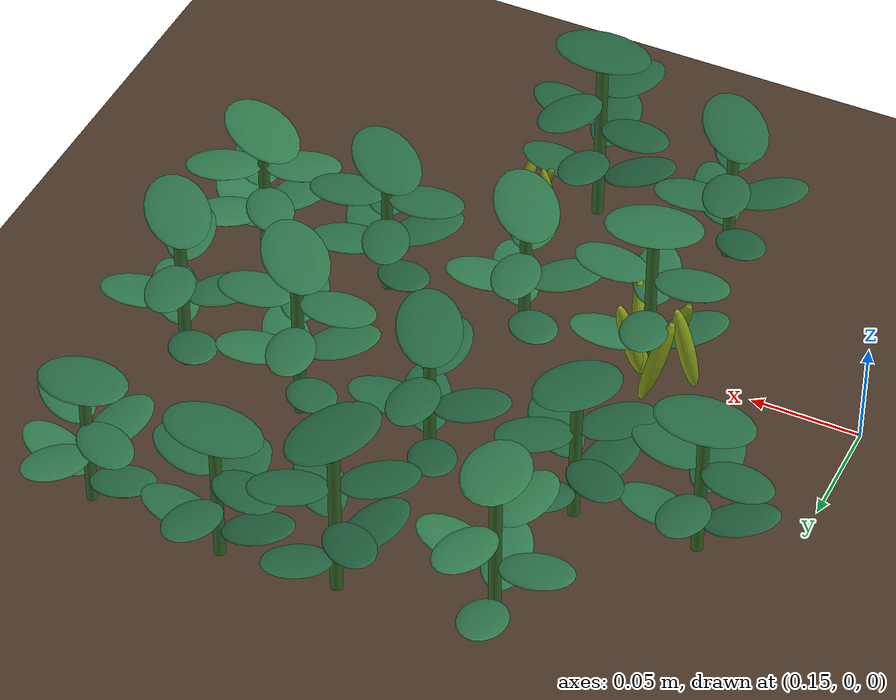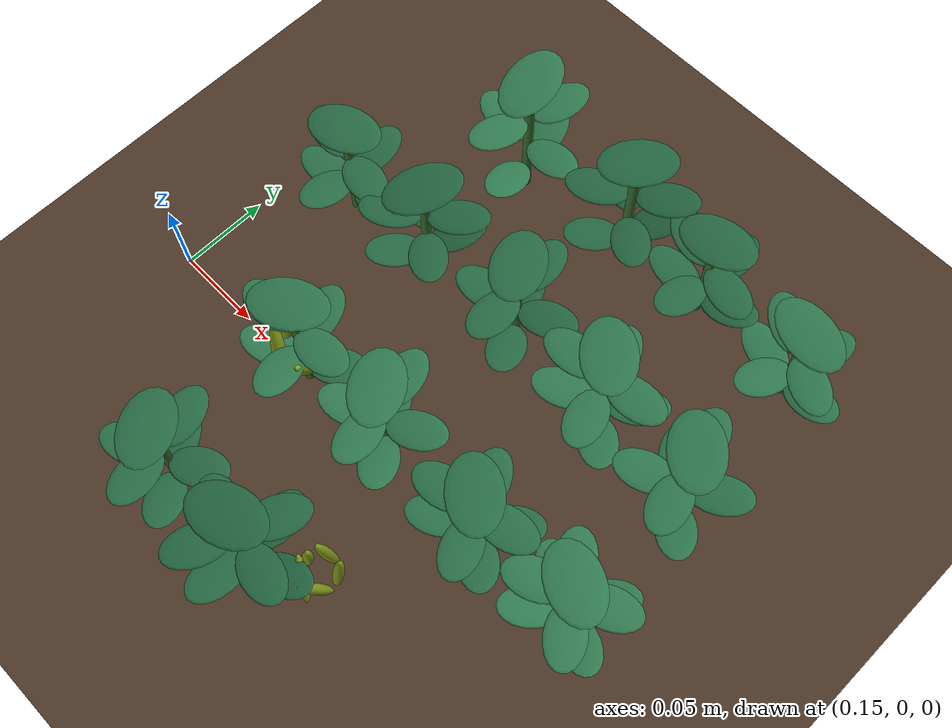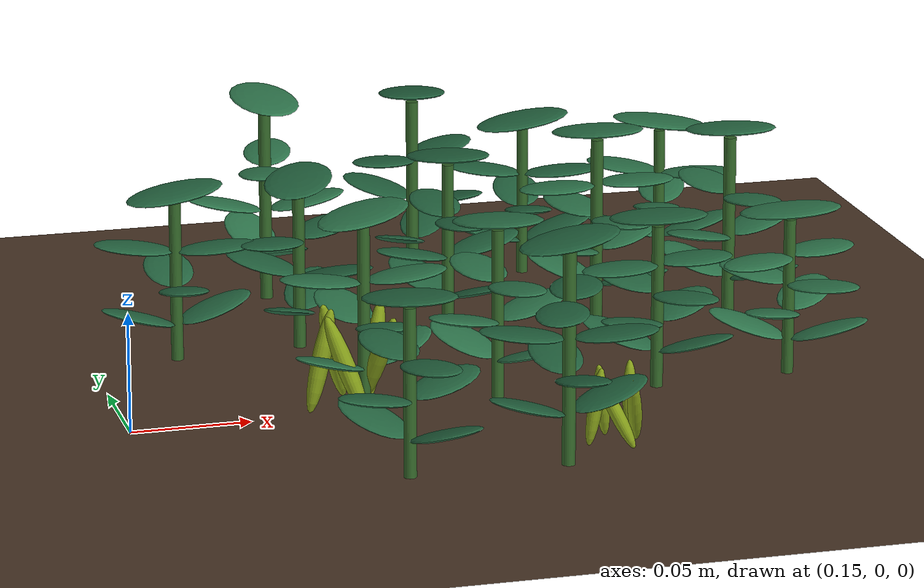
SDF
<sdf version="1.9">
 <world name="jim_field">
  <model name="ground_plane">
   <static>true</static>
   <link name="link">
    <collision name="collision">
     <geometry><plane><normal>0 0 1</normal><size>40 40</size></plane></geometry>
    </collision>
    <visual name="visual">
     <geometry><plane><normal>0 0 1</normal><size>40 40</size></plane></geometry>
     <material>
      <ambient>0.20 0.15 0.11 1</ambient>
      <diffuse>0.30 0.22 0.16 1</diffuse>
      <specular>0.01 0.01 0.01 1</specular>
     </material>
    </visual>
   </link>
  </model>
  <model name="field">
   <static>true</static>
   <pose>0.1837 -0.2516 0 0 0 0</pose>
   <model name="crop_128">
    <static>true</static>
    <pose>0.0617 0.1687 0 0 0 0</pose>
    <link name="link">
     <visual name="stem">
      <pose>0 0 0.0348 0 0 0</pose>
      <geometry><cylinder><radius>0.0026</radius><length>0.0696</length></cylinder></geometry>
      <material>
       <ambient>0.10 0.22 0.09 1</ambient>
       <diffuse>0.20 0.40 0.16 1</diffuse>
       <specular>0.05 0.06 0.05 1</specular>
      </material>
     </visual>
     <visual name="leaflet_0_0">
      <pose>0.0111 -0.0138 0.0209 0 -0.300 5.3866</pose>
      <geometry><ellipsoid><radii>0.0170 0.0105 0.0016</radii></ellipsoid></geometry>
      <material>
       <ambient>0.080 0.216 0.123 1</ambient>
       <diffuse>0.150 0.413 0.263 1</diffuse>
       <specular>0.05 0.06 0.05 1</specular>
      </material>
     </visual>
     <visual name="leaflet_0_1">
      <pose>-0.0111 0.0138 0.0209 0 -0.300 8.5282</pose>
      <geometry><ellipsoid><radii>0.0170 0.0105 0.0016</radii></ellipsoid></geometry>
      <material>
       <ambient>0.080 0.216 0.123 1</ambient>
       <diffuse>0.150 0.413 0.263 1</diffuse>
       <specular>0.05 0.06 0.05 1</specular>
      </material>
     </visual>
     <visual name="leaflet_1_0">
      <pose>0.0159 0.0078 0.0353 0 -0.200 6.7366</pose>
      <geometry><ellipsoid><radii>0.0170 0.0105 0.0016</radii></ellipsoid></geometry>
      <material>
       <ambient>0.080 0.216 0.123 1</ambient>
       <diffuse>0.150 0.413 0.263 1</diffuse>
       <specular>0.05 0.06 0.05 1</specular>
      </material>
     </visual>
     <visual name="leaflet_1_1">
      <pose>-0.0159 -0.0078 0.0353 0 -0.200 9.8782</pose>
      <geometry><ellipsoid><radii>0.0170 0.0105 0.0016</radii></ellipsoid></geometry>
      <material>
       <ambient>0.080 0.216 0.123 1</ambient>
       <diffuse>0.150 0.413 0.263 1</diffuse>
       <specular>0.05 0.06 0.05 1</specular>
      </material>
     </visual>
     <visual name="leaflet_2_0">
      <pose>-0.0041 0.0172 0.0497 0 -0.100 8.0866</pose>
      <geometry><ellipsoid><radii>0.0170 0.0105 0.0016</radii></ellipsoid></geometry>
      <material>
       <ambient>0.080 0.216 0.123 1</ambient>
       <diffuse>0.150 0.413 0.263 1</diffuse>
       <specular>0.05 0.06 0.05 1</specular>
      </material>
     </visual>
     <visual name="leaflet_2_1">
      <pose>0.0041 -0.0172 0.0497 0 -0.100 11.2282</pose>
      <geometry><ellipsoid><radii>0.0170 0.0105 0.0016</radii></ellipsoid></geometry>
      <material>
       <ambient>0.080 0.216 0.123 1</ambient>
       <diffuse>0.150 0.413 0.263 1</diffuse>
       <specular>0.05 0.06 0.05 1</specular>
      </material>
     </visual>
     <visual name="leaflet_terminal">
      <pose>0 0 0.0736 0 -0.12 5.3866</pose>
      <geometry><ellipsoid><radii>0.0215 0.0140 0.0018</radii></ellipsoid></geometry>
      <material>
       <ambient>0.080 0.216 0.123 1</ambient>
       <diffuse>0.150 0.413 0.263 1</diffuse>
       <specular>0.05 0.06 0.05 1</specular>
      </material>
     </visual>
    </link>
   </model>
   <model name="crop_129">
    <static>true</static>
    <pose>0.1259 0.1670 0 0 0 0</pose>
    <link name="link">
     <visual name="stem">
      <pose>0 0 0.0442 0 0 0</pose>
      <geometry><cylinder><radius>0.0027</radius><length>0.0884</length></cylinder></geometry>
      <material>
       <ambient>0.10 0.22 0.09 1</ambient>
       <diffuse>0.20 0.40 0.16 1</diffuse>
       <specular>0.05 0.06 0.05 1</specular>
      </material>
     </visual>
     <visual name="leaflet_0_0">
      <pose>0.0182 0.0043 0.0265 0 -0.300 0.2305</pose>
      <geometry><ellipsoid><radii>0.0170 0.0105 0.0016</radii></ellipsoid></geometry>
      <material>
       <ambient>0.073 0.204 0.114 1</ambient>
       <diffuse>0.135 0.389 0.246 1</diffuse>
       <specular>0.05 0.06 0.05 1</specular>
      </material>
     </visual>
     <visual name="leaflet_0_1">
      <pose>-0.0182 -0.0043 0.0265 0 -0.300 3.3721</pose>
      <geometry><ellipsoid><radii>0.0170 0.0105 0.0016</radii></ellipsoid></geometry>
      <material>
       <ambient>0.073 0.204 0.114 1</ambient>
       <diffuse>0.135 0.389 0.246 1</diffuse>
       <specular>0.05 0.06 0.05 1</specular>
      </material>
     </visual>
     <visual name="leaflet_1_0">
      <pose>-0.0002 0.0187 0.0402 0 -0.200 1.5805</pose>
      <geometry><ellipsoid><radii>0.0170 0.0105 0.0016</radii></ellipsoid></geometry>
      <material>
       <ambient>0.073 0.204 0.114 1</ambient>
       <diffuse>0.135 0.389 0.246 1</diffuse>
       <specular>0.05 0.06 0.05 1</specular>
      </material>
     </visual>
     <visual name="leaflet_1_1">
      <pose>0.0002 -0.0187 0.0402 0 -0.200 4.7221</pose>
      <geometry><ellipsoid><radii>0.0170 0.0105 0.0016</radii></ellipsoid></geometry>
      <material>
       <ambient>0.073 0.204 0.114 1</ambient>
       <diffuse>0.135 0.389 0.246 1</diffuse>
       <specular>0.05 0.06 0.05 1</specular>
      </material>
     </visual>
     <visual name="leaflet_2_0">
      <pose>-0.0183 0.0039 0.0539 0 -0.100 2.9305</pose>
      <geometry><ellipsoid><radii>0.0170 0.0105 0.0016</radii></ellipsoid></geometry>
      <material>
       <ambient>0.073 0.204 0.114 1</ambient>
       <diffuse>0.135 0.389 0.246 1</diffuse>
       <specular>0.05 0.06 0.05 1</specular>
      </material>
     </visual>
     <visual name="leaflet_2_1">
      <pose>0.0183 -0.0039 0.0539 0 -0.100 6.0721</pose>
      <geometry><ellipsoid><radii>0.0170 0.0105 0.0016</radii></ellipsoid></geometry>
      <material>
       <ambient>0.073 0.204 0.114 1</ambient>
       <diffuse>0.135 0.389 0.246 1</diffuse>
       <specular>0.05 0.06 0.05 1</specular>
      </material>
     </visual>
     <visual name="leaflet_3_0">
      <pose>-0.0078 -0.0170 0.0676 0 0.000 4.2805</pose>
      <geometry><ellipsoid><radii>0.0170 0.0105 0.0016</radii></ellipsoid></geometry>
      <material>
       <ambient>0.073 0.204 0.114 1</ambient>
       <diffuse>0.135 0.389 0.246 1</diffuse>
       <specular>0.05 0.06 0.05 1</specular>
      </material>
     </visual>
     <visual name="leaflet_3_1">
      <pose>0.0078 0.0170 0.0676 0 0.000 7.4221</pose>
      <geometry><ellipsoid><radii>0.0170 0.0105 0.0016</radii></ellipsoid></geometry>
      <material>
       <ambient>0.073 0.204 0.114 1</ambient>
       <diffuse>0.135 0.389 0.246 1</diffuse>
       <specular>0.05 0.06 0.05 1</specular>
      </material>
     </visual>
     <visual name="leaflet_terminal">
      <pose>0 0 0.0924 0 -0.12 0.2305</pose>
      <geometry><ellipsoid><radii>0.0215 0.0140 0.0018</radii></ellipsoid></geometry>
      <material>
       <ambient>0.073 0.204 0.114 1</ambient>
       <diffuse>0.135 0.389 0.246 1</diffuse>
       <specular>0.05 0.06 0.05 1</specular>
      </material>
     </visual>
    </link>
   </model>
   <model name="crop_145">
    <static>true</static>
    <pose>0.0642 0.2537 0 0 0 0</pose>
    <link name="link">
     <visual name="stem">
      <pose>0 0 0.0398 0 0 0</pose>
      <geometry><cylinder><radius>0.0026</radius><length>0.0796</length></cylinder></geometry>
      <material>
       <ambient>0.10 0.22 0.09 1</ambient>
       <diffuse>0.20 0.40 0.16 1</diffuse>
       <specular>0.05 0.06 0.05 1</specular>
      </material>
     </visual>
     <visual name="leaflet_0_0">
      <pose>0.0163 0.0083 0.0239 0 -0.300 0.4699</pose>
      <geometry><ellipsoid><radii>0.0170 0.0105 0.0016</radii></ellipsoid></geometry>
      <material>
       <ambient>0.093 0.239 0.141 1</ambient>
       <diffuse>0.177 0.458 0.295 1</diffuse>
       <specular>0.05 0.06 0.05 1</specular>
      </material>
     </visual>
     <visual name="leaflet_0_1">
      <pose>-0.0163 -0.0083 0.0239 0 -0.300 3.6115</pose>
      <geometry><ellipsoid><radii>0.0170 0.0105 0.0016</radii></ellipsoid></geometry>
      <material>
       <ambient>0.093 0.239 0.141 1</ambient>
       <diffuse>0.177 0.458 0.295 1</diffuse>
       <specular>0.05 0.06 0.05 1</specular>
      </material>
     </visual>
     <visual name="leaflet_1_0">
      <pose>-0.0045 0.0177 0.0404 0 -0.200 1.8199</pose>
      <geometry><ellipsoid><radii>0.0170 0.0105 0.0016</radii></ellipsoid></geometry>
      <material>
       <ambient>0.093 0.239 0.141 1</ambient>
       <diffuse>0.177 0.458 0.295 1</diffuse>
       <specular>0.05 0.06 0.05 1</specular>
      </material>
     </visual>
     <visual name="leaflet_1_1">
      <pose>0.0045 -0.0177 0.0404 0 -0.200 4.9615</pose>
      <geometry><ellipsoid><radii>0.0170 0.0105 0.0016</radii></ellipsoid></geometry>
      <material>
       <ambient>0.093 0.239 0.141 1</ambient>
       <diffuse>0.177 0.458 0.295 1</diffuse>
       <specular>0.05 0.06 0.05 1</specular>
      </material>
     </visual>
     <visual name="leaflet_2_0">
      <pose>-0.0182 -0.0005 0.0568 0 -0.100 3.1699</pose>
      <geometry><ellipsoid><radii>0.0170 0.0105 0.0016</radii></ellipsoid></geometry>
      <material>
       <ambient>0.093 0.239 0.141 1</ambient>
       <diffuse>0.177 0.458 0.295 1</diffuse>
       <specular>0.05 0.06 0.05 1</specular>
      </material>
     </visual>
     <visual name="leaflet_2_1">
      <pose>0.0182 0.0005 0.0568 0 -0.100 6.3115</pose>
      <geometry><ellipsoid><radii>0.0170 0.0105 0.0016</radii></ellipsoid></geometry>
      <material>
       <ambient>0.093 0.239 0.141 1</ambient>
       <diffuse>0.177 0.458 0.295 1</diffuse>
       <specular>0.05 0.06 0.05 1</specular>
      </material>
     </visual>
     <visual name="leaflet_terminal">
      <pose>0 0 0.0836 0 -0.12 0.4699</pose>
      <geometry><ellipsoid><radii>0.0215 0.0140 0.0018</radii></ellipsoid></geometry>
      <material>
       <ambient>0.093 0.239 0.141 1</ambient>
       <diffuse>0.177 0.458 0.295 1</diffuse>
       <specular>0.05 0.06 0.05 1</specular>
      </material>
     </visual>
    </link>
   </model>
   <model name="crop_146">
    <static>true</static>
    <pose>0.1217 0.2567 0 0 0 0</pose>
    <link name="link">
     <visual name="stem">
      <pose>0 0 0.0360 0 0 0</pose>
      <geometry><cylinder><radius>0.0026</radius><length>0.0719</length></cylinder></geometry>
      <material>
       <ambient>0.10 0.22 0.09 1</ambient>
       <diffuse>0.20 0.40 0.16 1</diffuse>
       <specular>0.05 0.06 0.05 1</specular>
      </material>
     </visual>
     <visual name="leaflet_0_0">
      <pose>0.0106 -0.0143 0.0216 0 -0.300 5.3491</pose>
      <geometry><ellipsoid><radii>0.0170 0.0105 0.0016</radii></ellipsoid></geometry>
      <material>
       <ambient>0.096 0.243 0.144 1</ambient>
       <diffuse>0.181 0.465 0.300 1</diffuse>
       <specular>0.05 0.06 0.05 1</specular>
      </material>
     </visual>
     <visual name="leaflet_0_1">
      <pose>-0.0106 0.0143 0.0216 0 -0.300 8.4907</pose>
      <geometry><ellipsoid><radii>0.0170 0.0105 0.0016</radii></ellipsoid></geometry>
      <material>
       <ambient>0.096 0.243 0.144 1</ambient>
       <diffuse>0.181 0.465 0.300 1</diffuse>
       <specular>0.05 0.06 0.05 1</specular>
      </material>
     </visual>
     <visual name="leaflet_1_0">
      <pose>0.0163 0.0072 0.0364 0 -0.200 6.6991</pose>
      <geometry><ellipsoid><radii>0.0170 0.0105 0.0016</radii></ellipsoid></geometry>
      <material>
       <ambient>0.096 0.243 0.144 1</ambient>
       <diffuse>0.181 0.465 0.300 1</diffuse>
       <specular>0.05 0.06 0.05 1</specular>
      </material>
     </visual>
     <visual name="leaflet_1_1">
      <pose>-0.0163 -0.0072 0.0364 0 -0.200 9.8407</pose>
      <geometry><ellipsoid><radii>0.0170 0.0105 0.0016</radii></ellipsoid></geometry>
      <material>
       <ambient>0.096 0.243 0.144 1</ambient>
       <diffuse>0.181 0.465 0.300 1</diffuse>
       <specular>0.05 0.06 0.05 1</specular>
      </material>
     </visual>
     <visual name="leaflet_2_0">
      <pose>-0.0035 0.0175 0.0513 0 -0.100 8.0491</pose>
      <geometry><ellipsoid><radii>0.0170 0.0105 0.0016</radii></ellipsoid></geometry>
      <material>
       <ambient>0.096 0.243 0.144 1</ambient>
       <diffuse>0.181 0.465 0.300 1</diffuse>
       <specular>0.05 0.06 0.05 1</specular>
      </material>
     </visual>
     <visual name="leaflet_2_1">
      <pose>0.0035 -0.0175 0.0513 0 -0.100 11.1907</pose>
      <geometry><ellipsoid><radii>0.0170 0.0105 0.0016</radii></ellipsoid></geometry>
      <material>
       <ambient>0.096 0.243 0.144 1</ambient>
       <diffuse>0.181 0.465 0.300 1</diffuse>
       <specular>0.05 0.06 0.05 1</specular>
      </material>
     </visual>
     <visual name="leaflet_terminal">
      <pose>0 0 0.0759 0 -0.12 5.3491</pose>
      <geometry><ellipsoid><radii>0.0215 0.0140 0.0018</radii></ellipsoid></geometry>
      <material>
       <ambient>0.096 0.243 0.144 1</ambient>
       <diffuse>0.181 0.465 0.300 1</diffuse>
       <specular>0.05 0.06 0.05 1</specular>
      </material>
     </visual>
    </link>
   </model>
   <model name="crop_147">
    <static>true</static>
    <pose>0.1896 0.2533 0 0 0 0</pose>
    <link name="link">
     <visual name="stem">
      <pose>0 0 0.0347 0 0 0</pose>
      <geometry><cylinder><radius>0.0026</radius><length>0.0695</length></cylinder></geometry>
      <material>
       <ambient>0.10 0.22 0.09 1</ambient>
       <diffuse>0.20 0.40 0.16 1</diffuse>
       <specular>0.05 0.06 0.05 1</specular>
      </material>
     </visual>
     <visual name="leaflet_0_0">
      <pose>0.0134 -0.0115 0.0208 0 -0.300 5.5731</pose>
      <geometry><ellipsoid><radii>0.0170 0.0105 0.0016</radii></ellipsoid></geometry>
      <material>
       <ambient>0.085 0.224 0.130 1</ambient>
       <diffuse>0.159 0.429 0.274 1</diffuse>
       <specular>0.05 0.06 0.05 1</specular>
      </material>
     </visual>
     <visual name="leaflet_0_1">
      <pose>-0.0134 0.0115 0.0208 0 -0.300 8.7147</pose>
      <geometry><ellipsoid><radii>0.0170 0.0105 0.0016</radii></ellipsoid></geometry>
      <material>
       <ambient>0.085 0.224 0.130 1</ambient>
       <diffuse>0.159 0.429 0.274 1</diffuse>
       <specular>0.05 0.06 0.05 1</specular>
      </material>
     </visual>
     <visual name="leaflet_1_0">
      <pose>0.0142 0.0106 0.0316 0 -0.200 6.9231</pose>
      <geometry><ellipsoid><radii>0.0170 0.0105 0.0016</radii></ellipsoid></geometry>
      <material>
       <ambient>0.085 0.224 0.130 1</ambient>
       <diffuse>0.159 0.429 0.274 1</diffuse>
       <specular>0.05 0.06 0.05 1</specular>
      </material>
     </visual>
     <visual name="leaflet_1_1">
      <pose>-0.0142 -0.0106 0.0316 0 -0.200 10.0647</pose>
      <geometry><ellipsoid><radii>0.0170 0.0105 0.0016</radii></ellipsoid></geometry>
      <material>
       <ambient>0.085 0.224 0.130 1</ambient>
       <diffuse>0.159 0.429 0.274 1</diffuse>
       <specular>0.05 0.06 0.05 1</specular>
      </material>
     </visual>
     <visual name="leaflet_2_0">
      <pose>-0.0072 0.0162 0.0424 0 -0.100 8.2731</pose>
      <geometry><ellipsoid><radii>0.0170 0.0105 0.0016</radii></ellipsoid></geometry>
      <material>
       <ambient>0.085 0.224 0.130 1</ambient>
       <diffuse>0.159 0.429 0.274 1</diffuse>
       <specular>0.05 0.06 0.05 1</specular>
      </material>
     </visual>
     <visual name="leaflet_2_1">
      <pose>0.0072 -0.0162 0.0424 0 -0.100 11.4147</pose>
      <geometry><ellipsoid><radii>0.0170 0.0105 0.0016</radii></ellipsoid></geometry>
      <material>
       <ambient>0.085 0.224 0.130 1</ambient>
       <diffuse>0.159 0.429 0.274 1</diffuse>
       <specular>0.05 0.06 0.05 1</specular>
      </material>
     </visual>
     <visual name="leaflet_3_0">
      <pose>-0.0174 -0.0035 0.0532 0 0.000 9.6231</pose>
      <geometry><ellipsoid><radii>0.0170 0.0105 0.0016</radii></ellipsoid></geometry>
      <material>
       <ambient>0.085 0.224 0.130 1</ambient>
       <diffuse>0.159 0.429 0.274 1</diffuse>
       <specular>0.05 0.06 0.05 1</specular>
      </material>
     </visual>
     <visual name="leaflet_3_1">
      <pose>0.0174 0.0035 0.0532 0 0.000 12.7647</pose>
      <geometry><ellipsoid><radii>0.0170 0.0105 0.0016</radii></ellipsoid></geometry>
      <material>
       <ambient>0.085 0.224 0.130 1</ambient>
       <diffuse>0.159 0.429 0.274 1</diffuse>
       <specular>0.05 0.06 0.05 1</specular>
      </material>
     </visual>
     <visual name="leaflet_terminal">
      <pose>0 0 0.0735 0 -0.12 5.5731</pose>
      <geometry><ellipsoid><radii>0.0215 0.0140 0.0018</radii></ellipsoid></geometry>
      <material>
       <ambient>0.085 0.224 0.130 1</ambient>
       <diffuse>0.159 0.429 0.274 1</diffuse>
       <specular>0.05 0.06 0.05 1</specular>
      </material>
     </visual>
    </link>
   </model>
   <model name="crop_148">
    <static>true</static>
    <pose>0.2484 0.2566 0 0 0 0</pose>
    <link name="link">
     <visual name="stem">
      <pose>0 0 0.0335 0 0 0</pose>
      <geometry><cylinder><radius>0.0025</radius><length>0.0670</length></cylinder></geometry>
      <material>
       <ambient>0.10 0.22 0.09 1</ambient>
       <diffuse>0.20 0.40 0.16 1</diffuse>
       <specular>0.05 0.06 0.05 1</specular>
      </material>
     </visual>
     <visual name="leaflet_0_0">
      <pose>0.0154 -0.0084 0.0201 0 -0.300 5.7834</pose>
      <geometry><ellipsoid><radii>0.0170 0.0105 0.0016</radii></ellipsoid></geometry>
      <material>
       <ambient>0.100 0.250 0.150 1</ambient>
       <diffuse>0.190 0.480 0.310 1</diffuse>
       <specular>0.05 0.06 0.05 1</specular>
      </material>
     </visual>
     <visual name="leaflet_0_1">
      <pose>-0.0154 0.0084 0.0201 0 -0.300 8.9250</pose>
      <geometry><ellipsoid><radii>0.0170 0.0105 0.0016</radii></ellipsoid></geometry>
      <material>
       <ambient>0.100 0.250 0.150 1</ambient>
       <diffuse>0.190 0.480 0.310 1</diffuse>
       <specular>0.05 0.06 0.05 1</specular>
      </material>
     </visual>
     <visual name="leaflet_1_0">
      <pose>0.0116 0.0132 0.0305 0 -0.200 7.1334</pose>
      <geometry><ellipsoid><radii>0.0170 0.0105 0.0016</radii></ellipsoid></geometry>
      <material>
       <ambient>0.100 0.250 0.150 1</ambient>
       <diffuse>0.190 0.480 0.310 1</diffuse>
       <specular>0.05 0.06 0.05 1</specular>
      </material>
     </visual>
     <visual name="leaflet_1_1">
      <pose>-0.0116 -0.0132 0.0305 0 -0.200 10.2750</pose>
      <geometry><ellipsoid><radii>0.0170 0.0105 0.0016</radii></ellipsoid></geometry>
      <material>
       <ambient>0.100 0.250 0.150 1</ambient>
       <diffuse>0.190 0.480 0.310 1</diffuse>
       <specular>0.05 0.06 0.05 1</specular>
      </material>
     </visual>
     <visual name="leaflet_2_0">
      <pose>-0.0103 0.0142 0.0409 0 -0.100 8.4834</pose>
      <geometry><ellipsoid><radii>0.0170 0.0105 0.0016</radii></ellipsoid></geometry>
      <material>
       <ambient>0.100 0.250 0.150 1</ambient>
       <diffuse>0.190 0.480 0.310 1</diffuse>
       <specular>0.05 0.06 0.05 1</specular>
      </material>
     </visual>
     <visual name="leaflet_2_1">
      <pose>0.0103 -0.0142 0.0409 0 -0.100 11.6250</pose>
      <geometry><ellipsoid><radii>0.0170 0.0105 0.0016</radii></ellipsoid></geometry>
      <material>
       <ambient>0.100 0.250 0.150 1</ambient>
       <diffuse>0.190 0.480 0.310 1</diffuse>
       <specular>0.05 0.06 0.05 1</specular>
      </material>
     </visual>
     <visual name="leaflet_3_0">
      <pose>-0.0161 -0.0070 0.0513 0 0.000 9.8334</pose>
      <geometry><ellipsoid><radii>0.0170 0.0105 0.0016</radii></ellipsoid></geometry>
      <material>
       <ambient>0.100 0.250 0.150 1</ambient>
       <diffuse>0.190 0.480 0.310 1</diffuse>
       <specular>0.05 0.06 0.05 1</specular>
      </material>
     </visual>
     <visual name="leaflet_3_1">
      <pose>0.0161 0.0070 0.0513 0 0.000 12.9750</pose>
      <geometry><ellipsoid><radii>0.0170 0.0105 0.0016</radii></ellipsoid></geometry>
      <material>
       <ambient>0.100 0.250 0.150 1</ambient>
       <diffuse>0.190 0.480 0.310 1</diffuse>
       <specular>0.05 0.06 0.05 1</specular>
      </material>
     </visual>
     <visual name="leaflet_terminal">
      <pose>0 0 0.0710 0 -0.12 5.7834</pose>
      <geometry><ellipsoid><radii>0.0215 0.0140 0.0018</radii></ellipsoid></geometry>
      <material>
       <ambient>0.100 0.250 0.150 1</ambient>
       <diffuse>0.190 0.480 0.310 1</diffuse>
       <specular>0.05 0.06 0.05 1</specular>
      </material>
     </visual>
    </link>
   </model>
   <model name="crop_161">
    <static>true</static>
    <pose>0.0040 0.3420 0 0 0 0</pose>
    <link name="link">
     <visual name="stem">
      <pose>0 0 0.0346 0 0 0</pose>
      <geometry><cylinder><radius>0.0026</radius><length>0.0693</length></cylinder></geometry>
      <material>
       <ambient>0.10 0.22 0.09 1</ambient>
       <diffuse>0.20 0.40 0.16 1</diffuse>
       <specular>0.05 0.06 0.05 1</specular>
      </material>
     </visual>
     <visual name="leaflet_0_0">
      <pose>0.0173 0.0037 0.0208 0 -0.300 0.2095</pose>
      <geometry><ellipsoid><radii>0.0170 0.0105 0.0016</radii></ellipsoid></geometry>
      <material>
       <ambient>0.081 0.218 0.125 1</ambient>
       <diffuse>0.152 0.416 0.266 1</diffuse>
       <specular>0.05 0.06 0.05 1</specular>
      </material>
     </visual>
     <visual name="leaflet_0_1">
      <pose>-0.0173 -0.0037 0.0208 0 -0.300 3.3511</pose>
      <geometry><ellipsoid><radii>0.0170 0.0105 0.0016</radii></ellipsoid></geometry>
      <material>
       <ambient>0.081 0.218 0.125 1</ambient>
       <diffuse>0.152 0.416 0.266 1</diffuse>
       <specular>0.05 0.06 0.05 1</specular>
      </material>
     </visual>
     <visual name="leaflet_1_0">
      <pose>0.0002 0.0177 0.0351 0 -0.200 1.5595</pose>
      <geometry><ellipsoid><radii>0.0170 0.0105 0.0016</radii></ellipsoid></geometry>
      <material>
       <ambient>0.081 0.218 0.125 1</ambient>
       <diffuse>0.152 0.416 0.266 1</diffuse>
       <specular>0.05 0.06 0.05 1</specular>
      </material>
     </visual>
     <visual name="leaflet_1_1">
      <pose>-0.0002 -0.0177 0.0351 0 -0.200 4.7011</pose>
      <geometry><ellipsoid><radii>0.0170 0.0105 0.0016</radii></ellipsoid></geometry>
      <material>
       <ambient>0.081 0.218 0.125 1</ambient>
       <diffuse>0.152 0.416 0.266 1</diffuse>
       <specular>0.05 0.06 0.05 1</specular>
      </material>
     </visual>
     <visual name="leaflet_2_0">
      <pose>-0.0172 0.0041 0.0494 0 -0.100 2.9095</pose>
      <geometry><ellipsoid><radii>0.0170 0.0105 0.0016</radii></ellipsoid></geometry>
      <material>
       <ambient>0.081 0.218 0.125 1</ambient>
       <diffuse>0.152 0.416 0.266 1</diffuse>
       <specular>0.05 0.06 0.05 1</specular>
      </material>
     </visual>
     <visual name="leaflet_2_1">
      <pose>0.0172 -0.0041 0.0494 0 -0.100 6.0511</pose>
      <geometry><ellipsoid><radii>0.0170 0.0105 0.0016</radii></ellipsoid></geometry>
      <material>
       <ambient>0.081 0.218 0.125 1</ambient>
       <diffuse>0.152 0.416 0.266 1</diffuse>
       <specular>0.05 0.06 0.05 1</specular>
      </material>
     </visual>
     <visual name="leaflet_terminal">
      <pose>0 0 0.0733 0 -0.12 0.2095</pose>
      <geometry><ellipsoid><radii>0.0215 0.0140 0.0018</radii></ellipsoid></geometry>
      <material>
       <ambient>0.081 0.218 0.125 1</ambient>
       <diffuse>0.152 0.416 0.266 1</diffuse>
       <specular>0.05 0.06 0.05 1</specular>
      </material>
     </visual>
    </link>
   </model>
   <model name="crop_162">
    <static>true</static>
    <pose>0.0583 0.3457 0 0 0 0</pose>
    <link name="link">
     <visual name="stem">
      <pose>0 0 0.0349 0 0 0</pose>
      <geometry><cylinder><radius>0.0026</radius><length>0.0698</length></cylinder></geometry>
      <material>
       <ambient>0.10 0.22 0.09 1</ambient>
       <diffuse>0.20 0.40 0.16 1</diffuse>
       <specular>0.05 0.06 0.05 1</specular>
      </material>
     </visual>
     <visual name="leaflet_0_0">
      <pose>0.0080 0.0158 0.0209 0 -0.300 1.1030</pose>
      <geometry><ellipsoid><radii>0.0170 0.0105 0.0016</radii></ellipsoid></geometry>
      <material>
       <ambient>0.074 0.207 0.115 1</ambient>
       <diffuse>0.138 0.393 0.249 1</diffuse>
       <specular>0.05 0.06 0.05 1</specular>
      </material>
     </visual>
     <visual name="leaflet_0_1">
      <pose>-0.0080 -0.0158 0.0209 0 -0.300 4.2446</pose>
      <geometry><ellipsoid><radii>0.0170 0.0105 0.0016</radii></ellipsoid></geometry>
      <material>
       <ambient>0.074 0.207 0.115 1</ambient>
       <diffuse>0.138 0.393 0.249 1</diffuse>
       <specular>0.05 0.06 0.05 1</specular>
      </material>
     </visual>
     <visual name="leaflet_1_0">
      <pose>-0.0137 0.0113 0.0354 0 -0.200 2.4530</pose>
      <geometry><ellipsoid><radii>0.0170 0.0105 0.0016</radii></ellipsoid></geometry>
      <material>
       <ambient>0.074 0.207 0.115 1</ambient>
       <diffuse>0.138 0.393 0.249 1</diffuse>
       <specular>0.05 0.06 0.05 1</specular>
      </material>
     </visual>
     <visual name="leaflet_1_1">
      <pose>0.0137 -0.0113 0.0354 0 -0.200 5.5946</pose>
      <geometry><ellipsoid><radii>0.0170 0.0105 0.0016</radii></ellipsoid></geometry>
      <material>
       <ambient>0.074 0.207 0.115 1</ambient>
       <diffuse>0.138 0.393 0.249 1</diffuse>
       <specular>0.05 0.06 0.05 1</specular>
      </material>
     </visual>
     <visual name="leaflet_2_0">
      <pose>-0.0140 -0.0109 0.0498 0 -0.100 3.8030</pose>
      <geometry><ellipsoid><radii>0.0170 0.0105 0.0016</radii></ellipsoid></geometry>
      <material>
       <ambient>0.074 0.207 0.115 1</ambient>
       <diffuse>0.138 0.393 0.249 1</diffuse>
       <specular>0.05 0.06 0.05 1</specular>
      </material>
     </visual>
     <visual name="leaflet_2_1">
      <pose>0.0140 0.0109 0.0498 0 -0.100 6.9446</pose>
      <geometry><ellipsoid><radii>0.0170 0.0105 0.0016</radii></ellipsoid></geometry>
      <material>
       <ambient>0.074 0.207 0.115 1</ambient>
       <diffuse>0.138 0.393 0.249 1</diffuse>
       <specular>0.05 0.06 0.05 1</specular>
      </material>
     </visual>
     <visual name="leaflet_terminal">
      <pose>0 0 0.0738 0 -0.12 1.1030</pose>
      <geometry><ellipsoid><radii>0.0215 0.0140 0.0018</radii></ellipsoid></geometry>
      <material>
       <ambient>0.074 0.207 0.115 1</ambient>
       <diffuse>0.138 0.393 0.249 1</diffuse>
       <specular>0.05 0.06 0.05 1</specular>
      </material>
     </visual>
    </link>
   </model>
   <model name="crop_163">
    <static>true</static>
    <pose>0.1244 0.3466 0 0 0 0</pose>
    <link name="link">
     <visual name="stem">
      <pose>0 0 0.0380 0 0 0</pose>
      <geometry><cylinder><radius>0.0026</radius><length>0.0759</length></cylinder></geometry>
      <material>
       <ambient>0.10 0.22 0.09 1</ambient>
       <diffuse>0.20 0.40 0.16 1</diffuse>
       <specular>0.05 0.06 0.05 1</specular>
      </material>
     </visual>
     <visual name="leaflet_0_0">
      <pose>0.0087 -0.0158 0.0228 0 -0.300 5.2154</pose>
      <geometry><ellipsoid><radii>0.0170 0.0105 0.0016</radii></ellipsoid></geometry>
      <material>
       <ambient>0.078 0.213 0.120 1</ambient>
       <diffuse>0.145 0.406 0.258 1</diffuse>
       <specular>0.05 0.06 0.05 1</specular>
      </material>
     </visual>
     <visual name="leaflet_0_1">
      <pose>-0.0087 0.0158 0.0228 0 -0.300 8.3570</pose>
      <geometry><ellipsoid><radii>0.0170 0.0105 0.0016</radii></ellipsoid></geometry>
      <material>
       <ambient>0.078 0.213 0.120 1</ambient>
       <diffuse>0.145 0.406 0.258 1</diffuse>
       <specular>0.05 0.06 0.05 1</specular>
      </material>
     </visual>
     <visual name="leaflet_1_0">
      <pose>0.0173 0.0050 0.0385 0 -0.200 6.5654</pose>
      <geometry><ellipsoid><radii>0.0170 0.0105 0.0016</radii></ellipsoid></geometry>
      <material>
       <ambient>0.078 0.213 0.120 1</ambient>
       <diffuse>0.145 0.406 0.258 1</diffuse>
       <specular>0.05 0.06 0.05 1</specular>
      </material>
     </visual>
     <visual name="leaflet_1_1">
      <pose>-0.0173 -0.0050 0.0385 0 -0.200 9.7070</pose>
      <geometry><ellipsoid><radii>0.0170 0.0105 0.0016</radii></ellipsoid></geometry>
      <material>
       <ambient>0.078 0.213 0.120 1</ambient>
       <diffuse>0.145 0.406 0.258 1</diffuse>
       <specular>0.05 0.06 0.05 1</specular>
      </material>
     </visual>
     <visual name="leaflet_2_0">
      <pose>-0.0011 0.0180 0.0542 0 -0.100 7.9154</pose>
      <geometry><ellipsoid><radii>0.0170 0.0105 0.0016</radii></ellipsoid></geometry>
      <material>
       <ambient>0.078 0.213 0.120 1</ambient>
       <diffuse>0.145 0.406 0.258 1</diffuse>
       <specular>0.05 0.06 0.05 1</specular>
      </material>
     </visual>
     <visual name="leaflet_2_1">
      <pose>0.0011 -0.0180 0.0542 0 -0.100 11.0570</pose>
      <geometry><ellipsoid><radii>0.0170 0.0105 0.0016</radii></ellipsoid></geometry>
      <material>
       <ambient>0.078 0.213 0.120 1</ambient>
       <diffuse>0.145 0.406 0.258 1</diffuse>
       <specular>0.05 0.06 0.05 1</specular>
      </material>
     </visual>
     <visual name="leaflet_terminal">
      <pose>0 0 0.0799 0 -0.12 5.2154</pose>
      <geometry><ellipsoid><radii>0.0215 0.0140 0.0018</radii></ellipsoid></geometry>
      <material>
       <ambient>0.078 0.213 0.120 1</ambient>
       <diffuse>0.145 0.406 0.258 1</diffuse>
       <specular>0.05 0.06 0.05 1</specular>
      </material>
     </visual>
    </link>
   </model>
   <model name="crop_164">
    <static>true</static>
    <pose>0.1892 0.3397 0 0 0 0</pose>
    <link name="link">
     <visual name="stem">
      <pose>0 0 0.0421 0 0 0</pose>
      <geometry><cylinder><radius>0.0027</radius><length>0.0842</length></cylinder></geometry>
      <material>
       <ambient>0.10 0.22 0.09 1</ambient>
       <diffuse>0.20 0.40 0.16 1</diffuse>
       <specular>0.05 0.06 0.05 1</specular>
      </material>
     </visual>
     <visual name="leaflet_0_0">
      <pose>0.0127 -0.0135 0.0253 0 -0.300 5.4661</pose>
      <geometry><ellipsoid><radii>0.0170 0.0105 0.0016</radii></ellipsoid></geometry>
      <material>
       <ambient>0.094 0.240 0.142 1</ambient>
       <diffuse>0.178 0.460 0.296 1</diffuse>
       <specular>0.05 0.06 0.05 1</specular>
      </material>
     </visual>
     <visual name="leaflet_0_1">
      <pose>-0.0127 0.0135 0.0253 0 -0.300 8.6077</pose>
      <geometry><ellipsoid><radii>0.0170 0.0105 0.0016</radii></ellipsoid></geometry>
      <material>
       <ambient>0.094 0.240 0.142 1</ambient>
       <diffuse>0.178 0.460 0.296 1</diffuse>
       <specular>0.05 0.06 0.05 1</specular>
      </material>
     </visual>
     <visual name="leaflet_1_0">
      <pose>0.0159 0.0094 0.0383 0 -0.200 6.8161</pose>
      <geometry><ellipsoid><radii>0.0170 0.0105 0.0016</radii></ellipsoid></geometry>
      <material>
       <ambient>0.094 0.240 0.142 1</ambient>
       <diffuse>0.178 0.460 0.296 1</diffuse>
       <specular>0.05 0.06 0.05 1</specular>
      </material>
     </visual>
     <visual name="leaflet_1_1">
      <pose>-0.0159 -0.0094 0.0383 0 -0.200 9.9577</pose>
      <geometry><ellipsoid><radii>0.0170 0.0105 0.0016</radii></ellipsoid></geometry>
      <material>
       <ambient>0.094 0.240 0.142 1</ambient>
       <diffuse>0.178 0.460 0.296 1</diffuse>
       <specular>0.05 0.06 0.05 1</specular>
      </material>
     </visual>
     <visual name="leaflet_2_0">
      <pose>-0.0057 0.0176 0.0514 0 -0.100 8.1661</pose>
      <geometry><ellipsoid><radii>0.0170 0.0105 0.0016</radii></ellipsoid></geometry>
      <material>
       <ambient>0.094 0.240 0.142 1</ambient>
       <diffuse>0.178 0.460 0.296 1</diffuse>
       <specular>0.05 0.06 0.05 1</specular>
      </material>
     </visual>
     <visual name="leaflet_2_1">
      <pose>0.0057 -0.0176 0.0514 0 -0.100 11.3077</pose>
      <geometry><ellipsoid><radii>0.0170 0.0105 0.0016</radii></ellipsoid></geometry>
      <material>
       <ambient>0.094 0.240 0.142 1</ambient>
       <diffuse>0.178 0.460 0.296 1</diffuse>
       <specular>0.05 0.06 0.05 1</specular>
      </material>
     </visual>
     <visual name="leaflet_3_0">
      <pose>-0.0184 -0.0017 0.0644 0 0.000 9.5161</pose>
      <geometry><ellipsoid><radii>0.0170 0.0105 0.0016</radii></ellipsoid></geometry>
      <material>
       <ambient>0.094 0.240 0.142 1</ambient>
       <diffuse>0.178 0.460 0.296 1</diffuse>
       <specular>0.05 0.06 0.05 1</specular>
      </material>
     </visual>
     <visual name="leaflet_3_1">
      <pose>0.0184 0.0017 0.0644 0 0.000 12.6577</pose>
      <geometry><ellipsoid><radii>0.0170 0.0105 0.0016</radii></ellipsoid></geometry>
      <material>
       <ambient>0.094 0.240 0.142 1</ambient>
       <diffuse>0.178 0.460 0.296 1</diffuse>
       <specular>0.05 0.06 0.05 1</specular>
      </material>
     </visual>
     <visual name="leaflet_terminal">
      <pose>0 0 0.0882 0 -0.12 5.4661</pose>
      <geometry><ellipsoid><radii>0.0215 0.0140 0.0018</radii></ellipsoid></geometry>
      <material>
       <ambient>0.094 0.240 0.142 1</ambient>
       <diffuse>0.178 0.460 0.296 1</diffuse>
       <specular>0.05 0.06 0.05 1</specular>
      </material>
     </visual>
    </link>
   </model>
   <model name="crop_165">
    <static>true</static>
    <pose>0.2477 0.3341 0 0 0 0</pose>
    <link name="link">
     <visual name="stem">
      <pose>0 0 0.0413 0 0 0</pose>
      <geometry><cylinder><radius>0.0027</radius><length>0.0826</length></cylinder></geometry>
      <material>
       <ambient>0.10 0.22 0.09 1</ambient>
       <diffuse>0.20 0.40 0.16 1</diffuse>
       <specular>0.05 0.06 0.05 1</specular>
      </material>
     </visual>
     <visual name="leaflet_0_0">
      <pose>0.0117 -0.0142 0.0248 0 -0.300 5.4017</pose>
      <geometry><ellipsoid><radii>0.0170 0.0105 0.0016</radii></ellipsoid></geometry>
      <material>
       <ambient>0.092 0.236 0.139 1</ambient>
       <diffuse>0.173 0.452 0.291 1</diffuse>
       <specular>0.05 0.06 0.05 1</specular>
      </material>
     </visual>
     <visual name="leaflet_0_1">
      <pose>-0.0117 0.0142 0.0248 0 -0.300 8.5433</pose>
      <geometry><ellipsoid><radii>0.0170 0.0105 0.0016</radii></ellipsoid></geometry>
      <material>
       <ambient>0.092 0.236 0.139 1</ambient>
       <diffuse>0.173 0.452 0.291 1</diffuse>
       <specular>0.05 0.06 0.05 1</specular>
      </material>
     </visual>
     <visual name="leaflet_1_0">
      <pose>0.0164 0.0083 0.0419 0 -0.200 6.7517</pose>
      <geometry><ellipsoid><radii>0.0170 0.0105 0.0016</radii></ellipsoid></geometry>
      <material>
       <ambient>0.092 0.236 0.139 1</ambient>
       <diffuse>0.173 0.452 0.291 1</diffuse>
       <specular>0.05 0.06 0.05 1</specular>
      </material>
     </visual>
     <visual name="leaflet_1_1">
      <pose>-0.0164 -0.0083 0.0419 0 -0.200 9.8933</pose>
      <geometry><ellipsoid><radii>0.0170 0.0105 0.0016</radii></ellipsoid></geometry>
      <material>
       <ambient>0.092 0.236 0.139 1</ambient>
       <diffuse>0.173 0.452 0.291 1</diffuse>
       <specular>0.05 0.06 0.05 1</specular>
      </material>
     </visual>
     <visual name="leaflet_2_0">
      <pose>-0.0045 0.0178 0.0589 0 -0.100 8.1017</pose>
      <geometry><ellipsoid><radii>0.0170 0.0105 0.0016</radii></ellipsoid></geometry>
      <material>
       <ambient>0.092 0.236 0.139 1</ambient>
       <diffuse>0.173 0.452 0.291 1</diffuse>
       <specular>0.05 0.06 0.05 1</specular>
      </material>
     </visual>
     <visual name="leaflet_2_1">
      <pose>0.0045 -0.0178 0.0589 0 -0.100 11.2433</pose>
      <geometry><ellipsoid><radii>0.0170 0.0105 0.0016</radii></ellipsoid></geometry>
      <material>
       <ambient>0.092 0.236 0.139 1</ambient>
       <diffuse>0.173 0.452 0.291 1</diffuse>
       <specular>0.05 0.06 0.05 1</specular>
      </material>
     </visual>
     <visual name="leaflet_terminal">
      <pose>0 0 0.0866 0 -0.12 5.4017</pose>
      <geometry><ellipsoid><radii>0.0215 0.0140 0.0018</radii></ellipsoid></geometry>
      <material>
       <ambient>0.092 0.236 0.139 1</ambient>
       <diffuse>0.173 0.452 0.291 1</diffuse>
       <specular>0.05 0.06 0.05 1</specular>
      </material>
     </visual>
    </link>
   </model>
   <model name="crop_179">
    <static>true</static>
    <pose>0.0603 0.4201 0 0 0 0</pose>
    <link name="link">
     <visual name="stem">
      <pose>0 0 0.0435 0 0 0</pose>
      <geometry><cylinder><radius>0.0027</radius><length>0.0870</length></cylinder></geometry>
      <material>
       <ambient>0.10 0.22 0.09 1</ambient>
       <diffuse>0.20 0.40 0.16 1</diffuse>
       <specular>0.05 0.06 0.05 1</specular>
      </material>
     </visual>
     <visual name="leaflet_0_0">
      <pose>-0.0032 0.0184 0.0261 0 -0.300 1.7413</pose>
      <geometry><ellipsoid><radii>0.0170 0.0105 0.0016</radii></ellipsoid></geometry>
      <material>
       <ambient>0.100 0.249 0.149 1</ambient>
       <diffuse>0.189 0.478 0.309 1</diffuse>
       <specular>0.05 0.06 0.05 1</specular>
      </material>
     </visual>
     <visual name="leaflet_0_1">
      <pose>0.0032 -0.0184 0.0261 0 -0.300 4.8829</pose>
      <geometry><ellipsoid><radii>0.0170 0.0105 0.0016</radii></ellipsoid></geometry>
      <material>
       <ambient>0.100 0.249 0.149 1</ambient>
       <diffuse>0.189 0.478 0.309 1</diffuse>
       <specular>0.05 0.06 0.05 1</specular>
      </material>
     </visual>
     <visual name="leaflet_1_0">
      <pose>-0.0186 0.0009 0.0441 0 -0.200 3.0913</pose>
      <geometry><ellipsoid><radii>0.0170 0.0105 0.0016</radii></ellipsoid></geometry>
      <material>
       <ambient>0.100 0.249 0.149 1</ambient>
       <diffuse>0.189 0.478 0.309 1</diffuse>
       <specular>0.05 0.06 0.05 1</specular>
      </material>
     </visual>
     <visual name="leaflet_1_1">
      <pose>0.0186 -0.0009 0.0441 0 -0.200 6.2329</pose>
      <geometry><ellipsoid><radii>0.0170 0.0105 0.0016</radii></ellipsoid></geometry>
      <material>
       <ambient>0.100 0.249 0.149 1</ambient>
       <diffuse>0.189 0.478 0.309 1</diffuse>
       <specular>0.05 0.06 0.05 1</specular>
      </material>
     </visual>
     <visual name="leaflet_2_0">
      <pose>-0.0050 -0.0180 0.0621 0 -0.100 4.4413</pose>
      <geometry><ellipsoid><radii>0.0170 0.0105 0.0016</radii></ellipsoid></geometry>
      <material>
       <ambient>0.100 0.249 0.149 1</ambient>
       <diffuse>0.189 0.478 0.309 1</diffuse>
       <specular>0.05 0.06 0.05 1</specular>
      </material>
     </visual>
     <visual name="leaflet_2_1">
      <pose>0.0050 0.0180 0.0621 0 -0.100 7.5829</pose>
      <geometry><ellipsoid><radii>0.0170 0.0105 0.0016</radii></ellipsoid></geometry>
      <material>
       <ambient>0.100 0.249 0.149 1</ambient>
       <diffuse>0.189 0.478 0.309 1</diffuse>
       <specular>0.05 0.06 0.05 1</specular>
      </material>
     </visual>
     <visual name="leaflet_terminal">
      <pose>0 0 0.0910 0 -0.12 1.7413</pose>
      <geometry><ellipsoid><radii>0.0215 0.0140 0.0018</radii></ellipsoid></geometry>
      <material>
       <ambient>0.100 0.249 0.149 1</ambient>
       <diffuse>0.189 0.478 0.309 1</diffuse>
       <specular>0.05 0.06 0.05 1</specular>
      </material>
     </visual>
    </link>
   </model>
   <model name="crop_180">
    <static>true</static>
    <pose>0.1289 0.4256 0 0 0 0</pose>
    <link name="link">
     <visual name="stem">
      <pose>0 0 0.0420 0 0 0</pose>
      <geometry><cylinder><radius>0.0027</radius><length>0.0840</length></cylinder></geometry>
      <material>
       <ambient>0.10 0.22 0.09 1</ambient>
       <diffuse>0.20 0.40 0.16 1</diffuse>
       <specular>0.05 0.06 0.05 1</specular>
      </material>
     </visual>
     <visual name="leaflet_0_0">
      <pose>-0.0098 -0.0156 0.0252 0 -0.300 4.1514</pose>
      <geometry><ellipsoid><radii>0.0170 0.0105 0.0016</radii></ellipsoid></geometry>
      <material>
       <ambient>0.071 0.201 0.111 1</ambient>
       <diffuse>0.132 0.383 0.242 1</diffuse>
       <specular>0.05 0.06 0.05 1</specular>
      </material>
     </visual>
     <visual name="leaflet_0_1">
      <pose>0.0098 0.0156 0.0252 0 -0.300 7.2930</pose>
      <geometry><ellipsoid><radii>0.0170 0.0105 0.0016</radii></ellipsoid></geometry>
      <material>
       <ambient>0.071 0.201 0.111 1</ambient>
       <diffuse>0.132 0.383 0.242 1</diffuse>
       <specular>0.05 0.06 0.05 1</specular>
      </material>
     </visual>
     <visual name="leaflet_1_0">
      <pose>0.0131 -0.0130 0.0425 0 -0.200 5.5014</pose>
      <geometry><ellipsoid><radii>0.0170 0.0105 0.0016</radii></ellipsoid></geometry>
      <material>
       <ambient>0.071 0.201 0.111 1</ambient>
       <diffuse>0.132 0.383 0.242 1</diffuse>
       <specular>0.05 0.06 0.05 1</specular>
      </material>
     </visual>
     <visual name="leaflet_1_1">
      <pose>-0.0131 0.0130 0.0425 0 -0.200 8.6430</pose>
      <geometry><ellipsoid><radii>0.0170 0.0105 0.0016</radii></ellipsoid></geometry>
      <material>
       <ambient>0.071 0.201 0.111 1</ambient>
       <diffuse>0.132 0.383 0.242 1</diffuse>
       <specular>0.05 0.06 0.05 1</specular>
      </material>
     </visual>
     <visual name="leaflet_2_0">
      <pose>0.0156 0.0099 0.0599 0 -0.100 6.8514</pose>
      <geometry><ellipsoid><radii>0.0170 0.0105 0.0016</radii></ellipsoid></geometry>
      <material>
       <ambient>0.071 0.201 0.111 1</ambient>
       <diffuse>0.132 0.383 0.242 1</diffuse>
       <specular>0.05 0.06 0.05 1</specular>
      </material>
     </visual>
     <visual name="leaflet_2_1">
      <pose>-0.0156 -0.0099 0.0599 0 -0.100 9.9930</pose>
      <geometry><ellipsoid><radii>0.0170 0.0105 0.0016</radii></ellipsoid></geometry>
      <material>
       <ambient>0.071 0.201 0.111 1</ambient>
       <diffuse>0.132 0.383 0.242 1</diffuse>
       <specular>0.05 0.06 0.05 1</specular>
      </material>
     </visual>
     <visual name="leaflet_terminal">
      <pose>0 0 0.0880 0 -0.12 4.1514</pose>
      <geometry><ellipsoid><radii>0.0215 0.0140 0.0018</radii></ellipsoid></geometry>
      <material>
       <ambient>0.071 0.201 0.111 1</ambient>
       <diffuse>0.132 0.383 0.242 1</diffuse>
       <specular>0.05 0.06 0.05 1</specular>
      </material>
     </visual>
    </link>
   </model>
   <model name="crop_181">
    <static>true</static>
    <pose>0.1811 0.4291 0 0 0 0</pose>
    <link name="link">
     <visual name="stem">
      <pose>0 0 0.0336 0 0 0</pose>
      <geometry><cylinder><radius>0.0025</radius><length>0.0671</length></cylinder></geometry>
      <material>
       <ambient>0.10 0.22 0.09 1</ambient>
       <diffuse>0.20 0.40 0.16 1</diffuse>
       <specular>0.05 0.06 0.05 1</specular>
      </material>
     </visual>
     <visual name="leaflet_0_0">
      <pose>0.0175 0.0017 0.0201 0 -0.300 0.0991</pose>
      <geometry><ellipsoid><radii>0.0170 0.0105 0.0016</radii></ellipsoid></geometry>
      <material>
       <ambient>0.078 0.213 0.121 1</ambient>
       <diffuse>0.146 0.407 0.259 1</diffuse>
       <specular>0.05 0.06 0.05 1</specular>
      </material>
     </visual>
     <visual name="leaflet_0_1">
      <pose>-0.0175 -0.0017 0.0201 0 -0.300 3.2407</pose>
      <geometry><ellipsoid><radii>0.0170 0.0105 0.0016</radii></ellipsoid></geometry>
      <material>
       <ambient>0.078 0.213 0.121 1</ambient>
       <diffuse>0.146 0.407 0.259 1</diffuse>
       <specular>0.05 0.06 0.05 1</specular>
      </material>
     </visual>
     <visual name="leaflet_1_0">
      <pose>0.0021 0.0175 0.0340 0 -0.200 1.4491</pose>
      <geometry><ellipsoid><radii>0.0170 0.0105 0.0016</radii></ellipsoid></geometry>
      <material>
       <ambient>0.078 0.213 0.121 1</ambient>
       <diffuse>0.146 0.407 0.259 1</diffuse>
       <specular>0.05 0.06 0.05 1</specular>
      </material>
     </visual>
     <visual name="leaflet_1_1">
      <pose>-0.0021 -0.0175 0.0340 0 -0.200 4.5907</pose>
      <geometry><ellipsoid><radii>0.0170 0.0105 0.0016</radii></ellipsoid></geometry>
      <material>
       <ambient>0.078 0.213 0.121 1</ambient>
       <diffuse>0.146 0.407 0.259 1</diffuse>
       <specular>0.05 0.06 0.05 1</specular>
      </material>
     </visual>
     <visual name="leaflet_2_0">
      <pose>-0.0166 0.0059 0.0479 0 -0.100 2.7991</pose>
      <geometry><ellipsoid><radii>0.0170 0.0105 0.0016</radii></ellipsoid></geometry>
      <material>
       <ambient>0.078 0.213 0.121 1</ambient>
       <diffuse>0.146 0.407 0.259 1</diffuse>
       <specular>0.05 0.06 0.05 1</specular>
      </material>
     </visual>
     <visual name="leaflet_2_1">
      <pose>0.0166 -0.0059 0.0479 0 -0.100 5.9407</pose>
      <geometry><ellipsoid><radii>0.0170 0.0105 0.0016</radii></ellipsoid></geometry>
      <material>
       <ambient>0.078 0.213 0.121 1</ambient>
       <diffuse>0.146 0.407 0.259 1</diffuse>
       <specular>0.05 0.06 0.05 1</specular>
      </material>
     </visual>
     <visual name="leaflet_terminal">
      <pose>0 0 0.0711 0 -0.12 0.0991</pose>
      <geometry><ellipsoid><radii>0.0215 0.0140 0.0018</radii></ellipsoid></geometry>
      <material>
       <ambient>0.078 0.213 0.121 1</ambient>
       <diffuse>0.146 0.407 0.259 1</diffuse>
       <specular>0.05 0.06 0.05 1</specular>
      </material>
     </visual>
    </link>
   </model>
   <model name="crop_182">
    <static>true</static>
    <pose>0.2443 0.4239 0 0 0 0</pose>
    <link name="link">
     <visual name="stem">
      <pose>0 0 0.0317 0 0 0</pose>
      <geometry><cylinder><radius>0.0025</radius><length>0.0634</length></cylinder></geometry>
      <material>
       <ambient>0.10 0.22 0.09 1</ambient>
       <diffuse>0.20 0.40 0.16 1</diffuse>
       <specular>0.05 0.06 0.05 1</specular>
      </material>
     </visual>
     <visual name="leaflet_0_0">
      <pose>-0.0172 0.0026 0.0190 0 -0.300 2.9908</pose>
      <geometry><ellipsoid><radii>0.0170 0.0105 0.0016</radii></ellipsoid></geometry>
      <material>
       <ambient>0.093 0.239 0.141 1</ambient>
       <diffuse>0.177 0.458 0.294 1</diffuse>
       <specular>0.05 0.06 0.05 1</specular>
      </material>
     </visual>
     <visual name="leaflet_0_1">
      <pose>0.0172 -0.0026 0.0190 0 -0.300 6.1324</pose>
      <geometry><ellipsoid><radii>0.0170 0.0105 0.0016</radii></ellipsoid></geometry>
      <material>
       <ambient>0.093 0.239 0.141 1</ambient>
       <diffuse>0.177 0.458 0.294 1</diffuse>
       <specular>0.05 0.06 0.05 1</specular>
      </material>
     </visual>
     <visual name="leaflet_1_0">
      <pose>-0.0063 -0.0162 0.0321 0 -0.200 4.3408</pose>
      <geometry><ellipsoid><radii>0.0170 0.0105 0.0016</radii></ellipsoid></geometry>
      <material>
       <ambient>0.093 0.239 0.141 1</ambient>
       <diffuse>0.177 0.458 0.294 1</diffuse>
       <specular>0.05 0.06 0.05 1</specular>
      </material>
     </visual>
     <visual name="leaflet_1_1">
      <pose>0.0063 0.0162 0.0321 0 -0.200 7.4824</pose>
      <geometry><ellipsoid><radii>0.0170 0.0105 0.0016</radii></ellipsoid></geometry>
      <material>
       <ambient>0.093 0.239 0.141 1</ambient>
       <diffuse>0.177 0.458 0.294 1</diffuse>
       <specular>0.05 0.06 0.05 1</specular>
      </material>
     </visual>
     <visual name="leaflet_2_0">
      <pose>0.0144 -0.0097 0.0452 0 -0.100 5.6908</pose>
      <geometry><ellipsoid><radii>0.0170 0.0105 0.0016</radii></ellipsoid></geometry>
      <material>
       <ambient>0.093 0.239 0.141 1</ambient>
       <diffuse>0.177 0.458 0.294 1</diffuse>
       <specular>0.05 0.06 0.05 1</specular>
      </material>
     </visual>
     <visual name="leaflet_2_1">
      <pose>-0.0144 0.0097 0.0452 0 -0.100 8.8324</pose>
      <geometry><ellipsoid><radii>0.0170 0.0105 0.0016</radii></ellipsoid></geometry>
      <material>
       <ambient>0.093 0.239 0.141 1</ambient>
       <diffuse>0.177 0.458 0.294 1</diffuse>
       <specular>0.05 0.06 0.05 1</specular>
      </material>
     </visual>
     <visual name="leaflet_terminal">
      <pose>0 0 0.0674 0 -0.12 2.9908</pose>
      <geometry><ellipsoid><radii>0.0215 0.0140 0.0018</radii></ellipsoid></geometry>
      <material>
       <ambient>0.093 0.239 0.141 1</ambient>
       <diffuse>0.177 0.458 0.294 1</diffuse>
       <specular>0.05 0.06 0.05 1</specular>
      </material>
     </visual>
    </link>
   </model>
   <model name="weed_far_5">
    <static>true</static>
    <pose>0.0585 0.2567 0 0 0 0</pose>
    <link name="link">
     <visual name="blade_0">
      <pose>-0.0040 -0.0115 0.0222 0.3811 -0.1316 4.3798</pose>
      <geometry><ellipsoid><radii>0.0039 0.0039 0.0222</radii></ellipsoid></geometry>
      <material>
       <ambient>0.24 0.30 0.04 1</ambient>
       <diffuse>0.52 0.62 0.10 1</diffuse>
       <specular>0.05 0.06 0.05 1</specular>
      </material>
     </visual>
     <visual name="blade_1">
      <pose>0.0107 -0.0059 0.0222 0.2247 0.4046 5.7761</pose>
      <geometry><ellipsoid><radii>0.0039 0.0039 0.0222</radii></ellipsoid></geometry>
      <material>
       <ambient>0.24 0.30 0.04 1</ambient>
       <diffuse>0.52 0.62 0.10 1</diffuse>
       <specular>0.05 0.06 0.05 1</specular>
      </material>
     </visual>
     <visual name="blade_2">
      <pose>0.0114 0.0044 0.0222 -0.0934 0.2449 6.6477</pose>
      <geometry><ellipsoid><radii>0.0039 0.0039 0.0222</radii></ellipsoid></geometry>
      <material>
       <ambient>0.24 0.30 0.04 1</ambient>
       <diffuse>0.52 0.62 0.10 1</diffuse>
       <specular>0.05 0.06 0.05 1</specular>
      </material>
     </visual>
     <visual name="blade_3">
      <pose>-0.0039 0.0116 0.0222 -0.2804 -0.0949 8.1803</pose>
      <geometry><ellipsoid><radii>0.0039 0.0039 0.0222</radii></ellipsoid></geometry>
      <material>
       <ambient>0.24 0.30 0.04 1</ambient>
       <diffuse>0.52 0.62 0.10 1</diffuse>
       <specular>0.05 0.06 0.05 1</specular>
      </material>
     </visual>
     <visual name="blade_4">
      <pose>-0.0122 -0.0012 0.0222 0.0229 -0.2288 9.5246</pose>
      <geometry><ellipsoid><radii>0.0039 0.0039 0.0222</radii></ellipsoid></geometry>
      <material>
       <ambient>0.24 0.30 0.04 1</ambient>
       <diffuse>0.52 0.62 0.10 1</diffuse>
       <specular>0.05 0.06 0.05 1</specular>
      </material>
     </visual>
    </link>
   </model>
   <model name="weed_far_6">
    <static>true</static>
    <pose>0.1515 0.1857 0 0 0 0</pose>
    <link name="link">
     <visual name="blade_0">
      <pose>-0.0038 0.0081 0.0163 -0.2005 -0.0953 2.0145</pose>
      <geometry><ellipsoid><radii>0.0029 0.0029 0.0163</radii></ellipsoid></geometry>
      <material>
       <ambient>0.24 0.30 0.04 1</ambient>
       <diffuse>0.52 0.62 0.10 1</diffuse>
       <specular>0.05 0.06 0.05 1</specular>
      </material>
     </visual>
     <visual name="blade_1">
      <pose>-0.0090 0.0001 0.0163 -0.0013 -0.1608 3.1333</pose>
      <geometry><ellipsoid><radii>0.0029 0.0029 0.0163</radii></ellipsoid></geometry>
      <material>
       <ambient>0.24 0.30 0.04 1</ambient>
       <diffuse>0.52 0.62 0.10 1</diffuse>
       <specular>0.05 0.06 0.05 1</specular>
      </material>
     </visual>
     <visual name="blade_2">
      <pose>-0.0030 -0.0084 0.0163 0.4958 -0.1791 4.3657</pose>
      <geometry><ellipsoid><radii>0.0029 0.0029 0.0163</radii></ellipsoid></geometry>
      <material>
       <ambient>0.24 0.30 0.04 1</ambient>
       <diffuse>0.52 0.62 0.10 1</diffuse>
       <specular>0.05 0.06 0.05 1</specular>
      </material>
     </visual>
     <visual name="blade_3">
      <pose>0.0051 -0.0074 0.0163 0.3873 0.2646 5.3118</pose>
      <geometry><ellipsoid><radii>0.0029 0.0029 0.0163</radii></ellipsoid></geometry>
      <material>
       <ambient>0.24 0.30 0.04 1</ambient>
       <diffuse>0.52 0.62 0.10 1</diffuse>
       <specular>0.05 0.06 0.05 1</specular>
      </material>
     </visual>
     <visual name="blade_4">
      <pose>0.0071 0.0055 0.0163 -0.1087 0.1405 6.9415</pose>
      <geometry><ellipsoid><radii>0.0029 0.0029 0.0163</radii></ellipsoid></geometry>
      <material>
       <ambient>0.24 0.30 0.04 1</ambient>
       <diffuse>0.52 0.62 0.10 1</diffuse>
       <specular>0.05 0.06 0.05 1</specular>
      </material>
     </visual>
    </link>
   </model>
  </model>
 </world>
</sdf>
